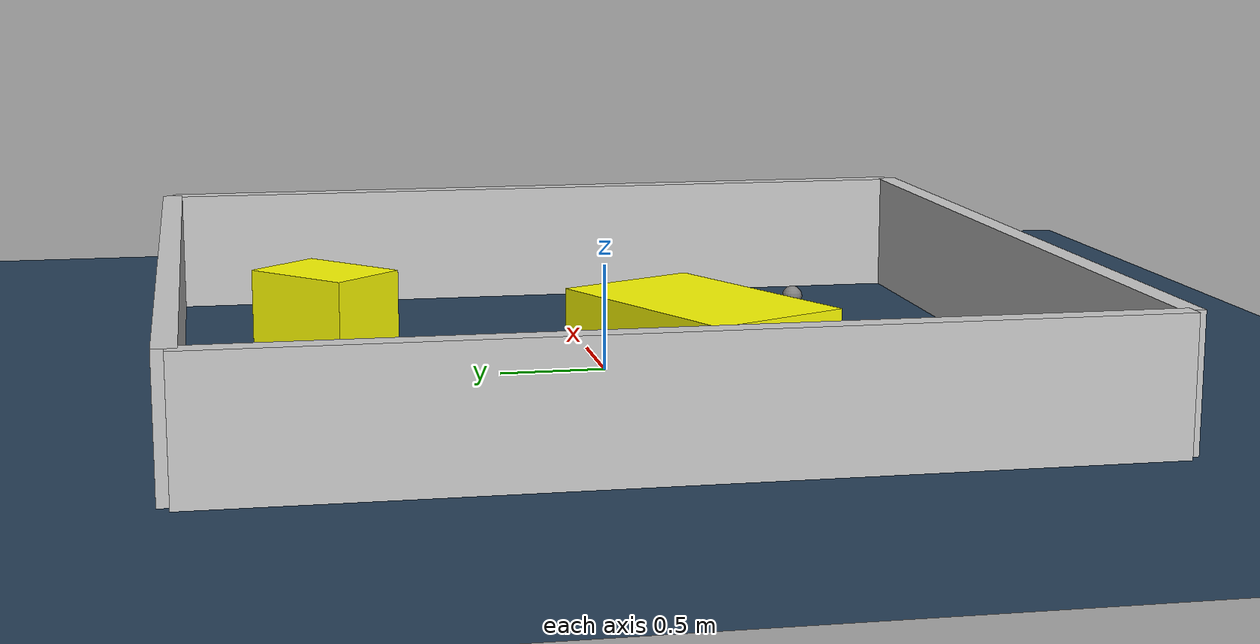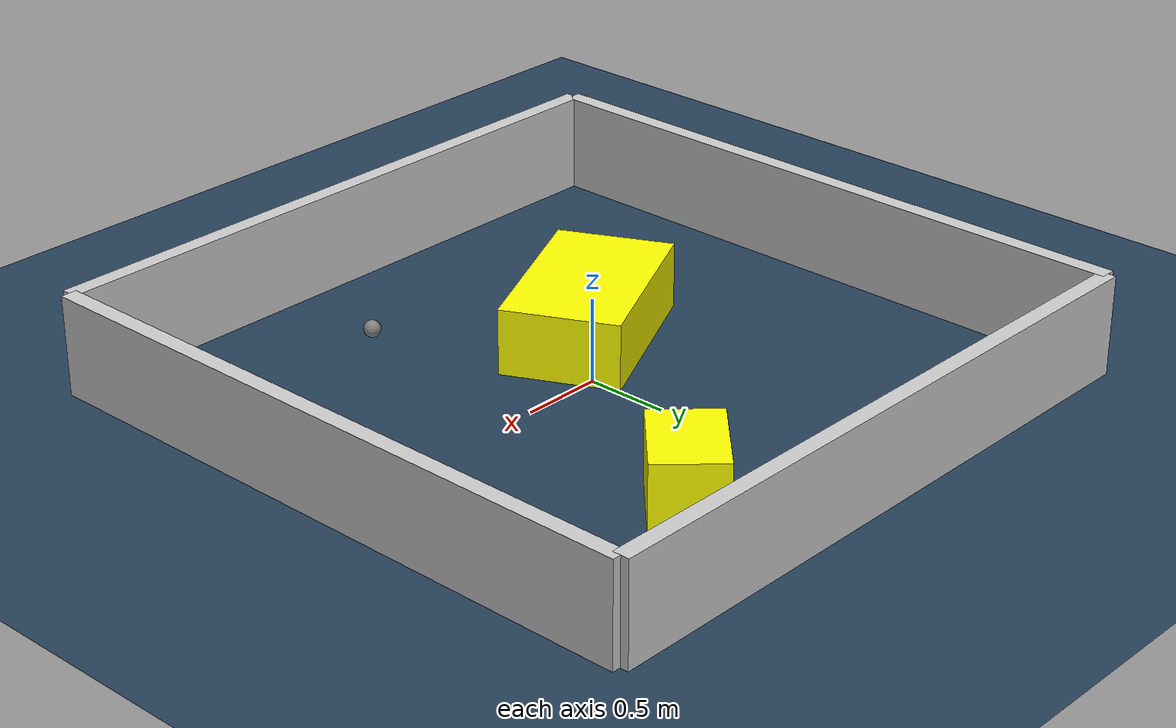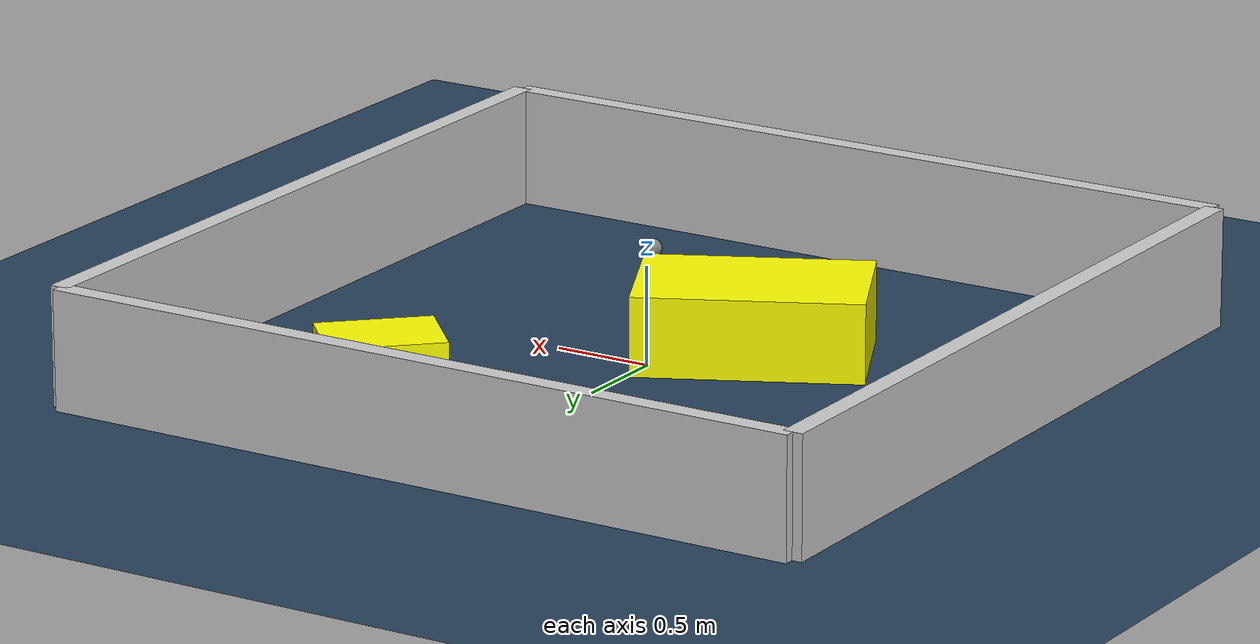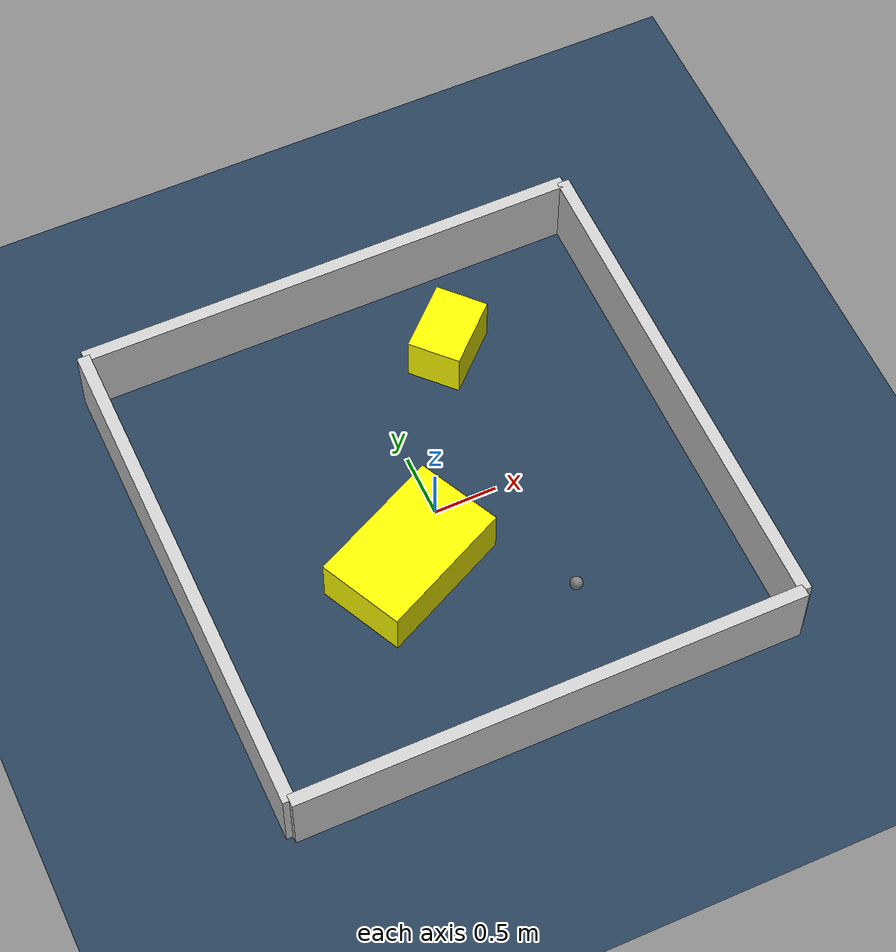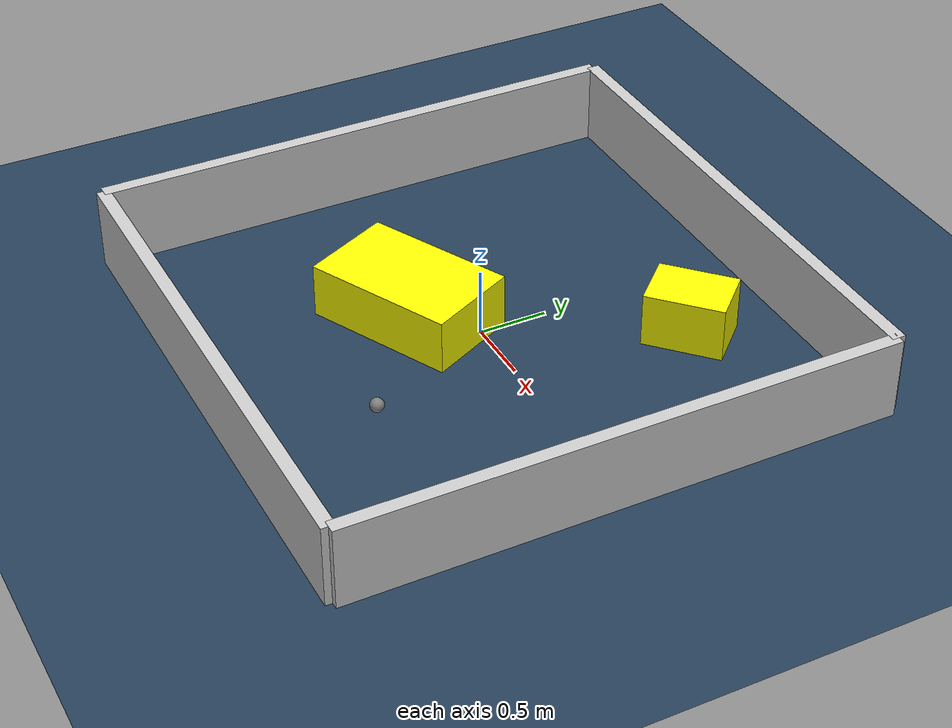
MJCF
<?xml version="1.0" ?>
<mujoco model="generated_environment">
  <option timestep="0.01" integrator="RK4" cone="elliptic"/>
  <default>
    <geom density="1"/>
  </default>
  <asset>
    <texture builtin="gradient" height="3072" rgb1="0.3 0.5 0.7" rgb2="0 0 0" type="skybox" width="512"/>
    <texture builtin="checker" height="300" mark="edge" markrgb="0.8 0.8 0.8" name="groundplane" rgb1="0.2 0.3 0.4" rgb2="0.1 0.2 0.3" type="2d" width="300"/>
    <material name="groundplane" reflectance="0.2" texrepeat="5 5" texture="groundplane" texuniform="true"/>
    <material name="robot" rgba="0.0 1.0 0.0 1"/>
  </asset>
  <worldbody>
    <light dir="0 0 -1" directional="true" pos="0 0 1.5"/>
    <geom condim="4" friction="1.0 0.005 0.001" material="groundplane" name="floor" size="0 0 0.05" type="plane"/>
    <body name="walls">
      <geom name="wall_1" condim="4" pos="-2.0 0.0 0.3" rgba="0.800000011920929 0.800000011920929 0.800000011920929 1.0" size="0.05 2.0 0.3" type="box"/>
      <geom name="wall_2" condim="4" pos="2.0 0.0 0.3" rgba="0.800000011920929 0.800000011920929 0.800000011920929 1.0" size="0.05 2.0 0.3" type="box"/>
      <geom name="wall_3" condim="4" pos="0.0 -2.0 0.3" rgba="0.800000011920929 0.800000011920929 0.800000011920929 1.0" size="2.0 0.05 0.3" type="box"/>
      <geom name="wall_4" condim="4" pos="0.0 2.0 0.3" rgba="0.800000011920929 0.800000011920929 0.800000011920929 1.0" size="2.0 0.05 0.3" type="box"/>
    </body>
    <body name="robot">
      <joint name="joint_x" type="slide" pos="0 0 0" axis="1 0 0"/>
      <joint name="joint_y" type="slide" pos="0 0 0" axis="0 1 0"/>
      <geom name="robot" type="sphere" pos="0.6435558771207717 -1.0827253516043036 0.2" size="0.05" mass="5." friction="1.0 0.005 0.0001" condim="4"/>
      <site name="sensor_ball"/>
    </body>
    <body name="obstacle_1_movable">
      <geom name="obstacle_1_movable" condim="4" pos="0.6805016965449444 1.268216982784897 0.2" euler="0 0 133.35055418592606" friction="1.0 0.005 0.001" rgba="1 1 0 1" size="0.2105530101721534 0.28849606597019556 0.2" type="box" mass="0.1"/>
      <joint type="free"/>
    </body>
    <body name="obstacle_2_movable">
      <geom name="obstacle_2_movable" condim="4" pos="-0.3706058606681879 -0.3724980207468007 0.2" euler="0 0 115.89111742516958" friction="1.0 0.005 0.001" rgba="1 1 0 1" size="0.3533153459276161 0.5649923229507958 0.2" type="box" mass="0.1"/>
      <joint type="free"/>
    </body>
  </worldbody>
  <actuator>
    <motor name="actuator_x" joint="joint_x" gear="1" ctrlrange="-1 1"/>
    <motor name="actuator_y" joint="joint_y" gear="1" ctrlrange="-1 1"/>
  </actuator>
</mujoco>
